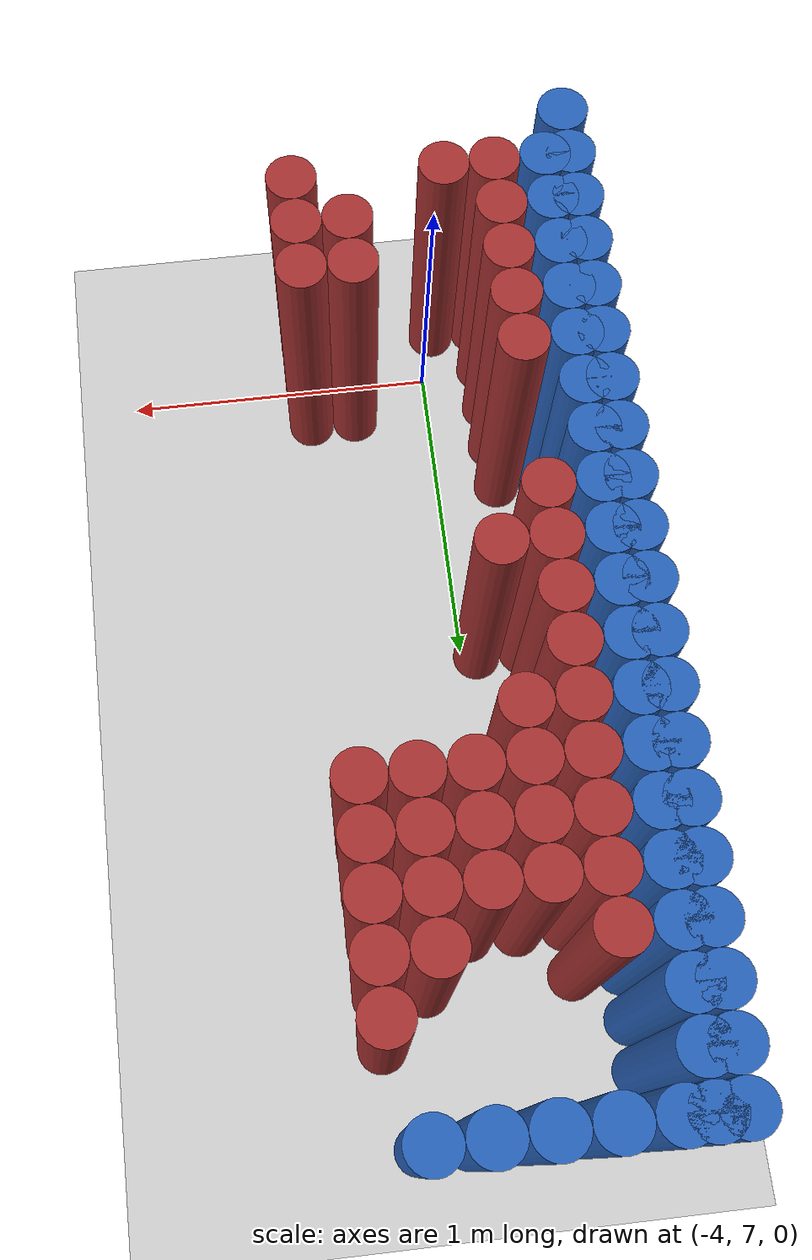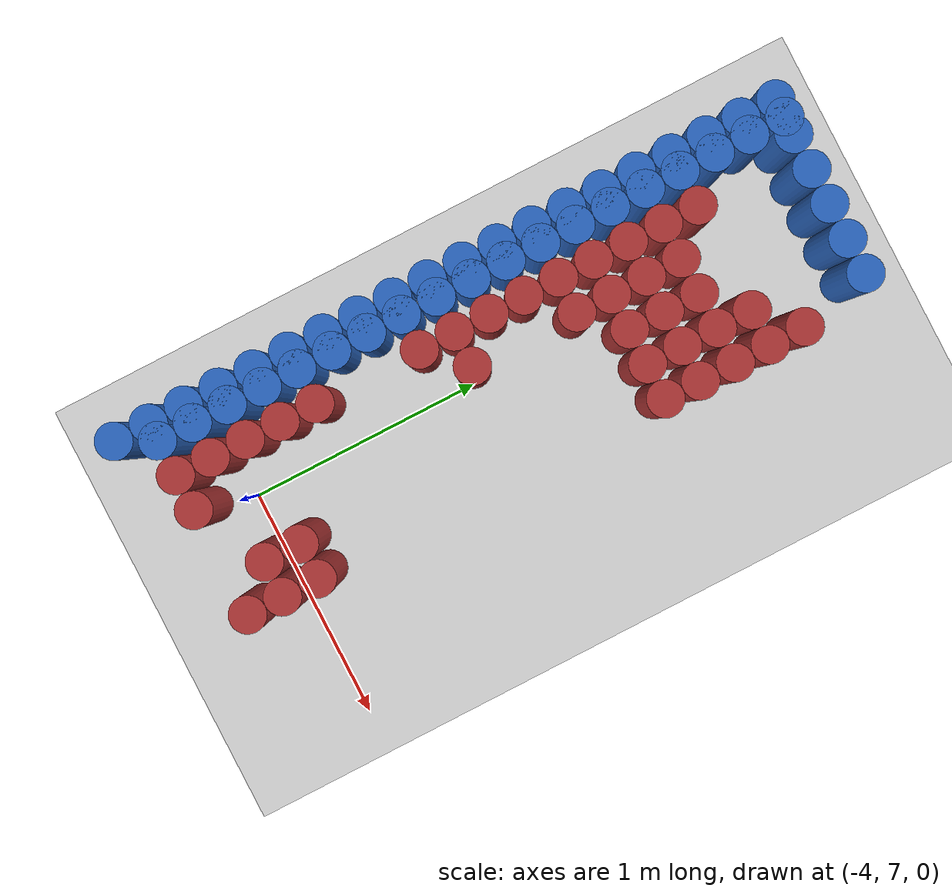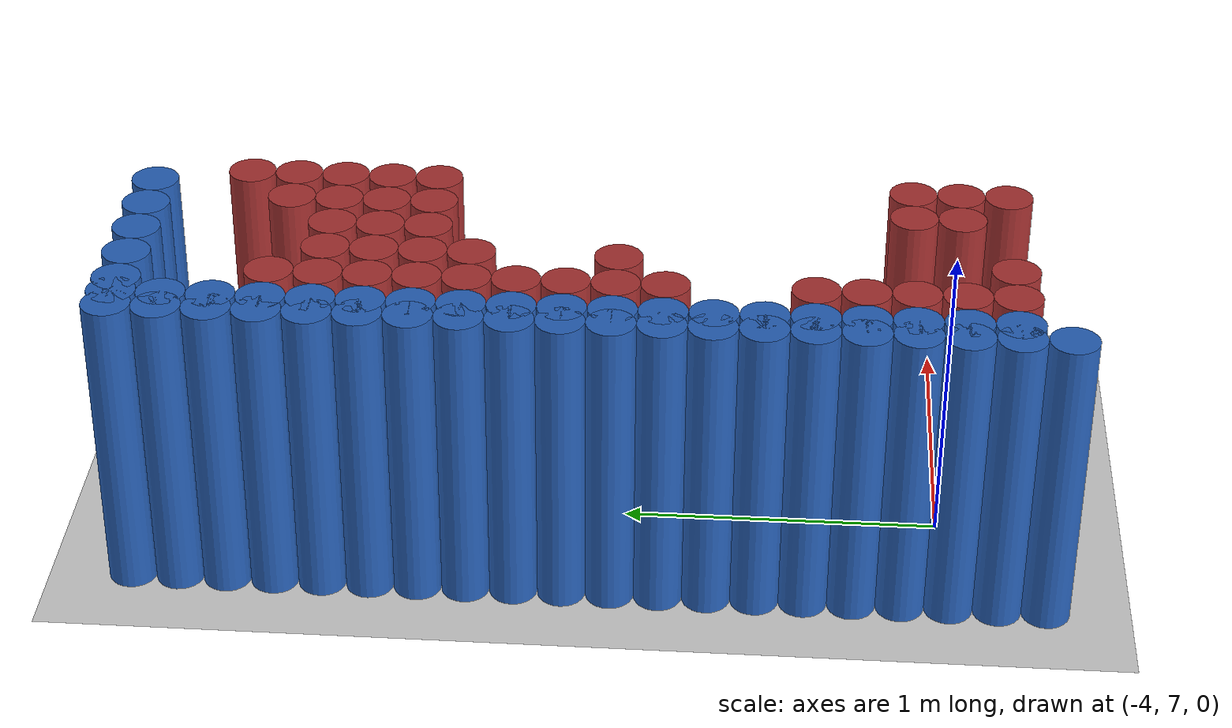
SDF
<sdf version="1.6">
 <world name="barn_world">
  <model name="ground_plane">
   <static>1</static>
   <link name="link">
    <collision name="collision">
     <geometry><plane><normal>0 0 1</normal><size>100 100</size></plane></geometry>
    </collision>
    <visual name="visual">
     <geometry><plane><normal>0 0 1</normal><size>100 100</size></plane></geometry>
     <material>
      <script><uri>file://media/materials/scripts/gazebo.material</uri><name>Gazebo/Grey</name></script>
     </material>
    </visual>
   </link>
  </model>
  <model name="unit_cylinder_137">
   <static>1</static>
   <pose>-4.3500 6.8250 0.5 0 0 0</pose>
   <link name="link">
    <collision name="collision">
     <geometry><cylinder><radius>0.075</radius><length>1</length></cylinder></geometry>
    </collision>
    <visual name="visual">
     <geometry><cylinder><radius>0.075</radius><length>1</length></cylinder></geometry>
     <material><ambient>0.152 0.379 0.72 1</ambient><diffuse>0.152 0.379 0.72 1</diffuse></material>
    </visual>
   </link>
  </model>
  <model name="unit_cylinder_138">
   <static>1</static>
   <pose>-4.3500 6.9750 0.5 0 0 0</pose>
   <link name="link">
    <collision name="collision">
     <geometry><cylinder><radius>0.075</radius><length>1</length></cylinder></geometry>
    </collision>
    <visual name="visual">
     <geometry><cylinder><radius>0.075</radius><length>1</length></cylinder></geometry>
     <material><ambient>0.152 0.379 0.72 1</ambient><diffuse>0.152 0.379 0.72 1</diffuse></material>
    </visual>
   </link>
  </model>
  <model name="unit_cylinder_139">
   <static>1</static>
   <pose>-4.3500 7.1250 0.5 0 0 0</pose>
   <link name="link">
    <collision name="collision">
     <geometry><cylinder><radius>0.075</radius><length>1</length></cylinder></geometry>
    </collision>
    <visual name="visual">
     <geometry><cylinder><radius>0.075</radius><length>1</length></cylinder></geometry>
     <material><ambient>0.152 0.379 0.72 1</ambient><diffuse>0.152 0.379 0.72 1</diffuse></material>
    </visual>
   </link>
  </model>
  <model name="unit_cylinder_140">
   <static>1</static>
   <pose>-4.3500 7.2750 0.5 0 0 0</pose>
   <link name="link">
    <collision name="collision">
     <geometry><cylinder><radius>0.075</radius><length>1</length></cylinder></geometry>
    </collision>
    <visual name="visual">
     <geometry><cylinder><radius>0.075</radius><length>1</length></cylinder></geometry>
     <material><ambient>0.152 0.379 0.72 1</ambient><diffuse>0.152 0.379 0.72 1</diffuse></material>
    </visual>
   </link>
  </model>
  <model name="unit_cylinder_141">
   <static>1</static>
   <pose>-4.3500 7.4250 0.5 0 0 0</pose>
   <link name="link">
    <collision name="collision">
     <geometry><cylinder><radius>0.075</radius><length>1</length></cylinder></geometry>
    </collision>
    <visual name="visual">
     <geometry><cylinder><radius>0.075</radius><length>1</length></cylinder></geometry>
     <material><ambient>0.152 0.379 0.72 1</ambient><diffuse>0.152 0.379 0.72 1</diffuse></material>
    </visual>
   </link>
  </model>
  <model name="unit_cylinder_142">
   <static>1</static>
   <pose>-4.3500 7.5750 0.5 0 0 0</pose>
   <link name="link">
    <collision name="collision">
     <geometry><cylinder><radius>0.075</radius><length>1</length></cylinder></geometry>
    </collision>
    <visual name="visual">
     <geometry><cylinder><radius>0.075</radius><length>1</length></cylinder></geometry>
     <material><ambient>0.152 0.379 0.72 1</ambient><diffuse>0.152 0.379 0.72 1</diffuse></material>
    </visual>
   </link>
  </model>
  <model name="unit_cylinder_143">
   <static>1</static>
   <pose>-4.3500 7.7250 0.5 0 0 0</pose>
   <link name="link">
    <collision name="collision">
     <geometry><cylinder><radius>0.075</radius><length>1</length></cylinder></geometry>
    </collision>
    <visual name="visual">
     <geometry><cylinder><radius>0.075</radius><length>1</length></cylinder></geometry>
     <material><ambient>0.152 0.379 0.72 1</ambient><diffuse>0.152 0.379 0.72 1</diffuse></material>
    </visual>
   </link>
  </model>
  <model name="unit_cylinder_144">
   <static>1</static>
   <pose>-4.3500 7.8750 0.5 0 0 0</pose>
   <link name="link">
    <collision name="collision">
     <geometry><cylinder><radius>0.075</radius><length>1</length></cylinder></geometry>
    </collision>
    <visual name="visual">
     <geometry><cylinder><radius>0.075</radius><length>1</length></cylinder></geometry>
     <material><ambient>0.152 0.379 0.72 1</ambient><diffuse>0.152 0.379 0.72 1</diffuse></material>
    </visual>
   </link>
  </model>
  <model name="unit_cylinder_145">
   <static>1</static>
   <pose>-4.3500 8.0250 0.5 0 0 0</pose>
   <link name="link">
    <collision name="collision">
     <geometry><cylinder><radius>0.075</radius><length>1</length></cylinder></geometry>
    </collision>
    <visual name="visual">
     <geometry><cylinder><radius>0.075</radius><length>1</length></cylinder></geometry>
     <material><ambient>0.152 0.379 0.72 1</ambient><diffuse>0.152 0.379 0.72 1</diffuse></material>
    </visual>
   </link>
  </model>
  <model name="unit_cylinder_146">
   <static>1</static>
   <pose>-4.3500 8.1750 0.5 0 0 0</pose>
   <link name="link">
    <collision name="collision">
     <geometry><cylinder><radius>0.075</radius><length>1</length></cylinder></geometry>
    </collision>
    <visual name="visual">
     <geometry><cylinder><radius>0.075</radius><length>1</length></cylinder></geometry>
     <material><ambient>0.152 0.379 0.72 1</ambient><diffuse>0.152 0.379 0.72 1</diffuse></material>
    </visual>
   </link>
  </model>
  <model name="unit_cylinder_147">
   <static>1</static>
   <pose>-4.3500 8.3250 0.5 0 0 0</pose>
   <link name="link">
    <collision name="collision">
     <geometry><cylinder><radius>0.075</radius><length>1</length></cylinder></geometry>
    </collision>
    <visual name="visual">
     <geometry><cylinder><radius>0.075</radius><length>1</length></cylinder></geometry>
     <material><ambient>0.152 0.379 0.72 1</ambient><diffuse>0.152 0.379 0.72 1</diffuse></material>
    </visual>
   </link>
  </model>
  <model name="unit_cylinder_148">
   <static>1</static>
   <pose>-4.3500 8.4750 0.5 0 0 0</pose>
   <link name="link">
    <collision name="collision">
     <geometry><cylinder><radius>0.075</radius><length>1</length></cylinder></geometry>
    </collision>
    <visual name="visual">
     <geometry><cylinder><radius>0.075</radius><length>1</length></cylinder></geometry>
     <material><ambient>0.152 0.379 0.72 1</ambient><diffuse>0.152 0.379 0.72 1</diffuse></material>
    </visual>
   </link>
  </model>
  <model name="unit_cylinder_149">
   <static>1</static>
   <pose>-4.3500 8.6250 0.5 0 0 0</pose>
   <link name="link">
    <collision name="collision">
     <geometry><cylinder><radius>0.075</radius><length>1</length></cylinder></geometry>
    </collision>
    <visual name="visual">
     <geometry><cylinder><radius>0.075</radius><length>1</length></cylinder></geometry>
     <material><ambient>0.152 0.379 0.72 1</ambient><diffuse>0.152 0.379 0.72 1</diffuse></material>
    </visual>
   </link>
  </model>
  <model name="unit_cylinder_150">
   <static>1</static>
   <pose>-4.3500 8.7750 0.5 0 0 0</pose>
   <link name="link">
    <collision name="collision">
     <geometry><cylinder><radius>0.075</radius><length>1</length></cylinder></geometry>
    </collision>
    <visual name="visual">
     <geometry><cylinder><radius>0.075</radius><length>1</length></cylinder></geometry>
     <material><ambient>0.152 0.379 0.72 1</ambient><diffuse>0.152 0.379 0.72 1</diffuse></material>
    </visual>
   </link>
  </model>
  <model name="unit_cylinder_151">
   <static>1</static>
   <pose>-4.3500 8.9250 0.5 0 0 0</pose>
   <link name="link">
    <collision name="collision">
     <geometry><cylinder><radius>0.075</radius><length>1</length></cylinder></geometry>
    </collision>
    <visual name="visual">
     <geometry><cylinder><radius>0.075</radius><length>1</length></cylinder></geometry>
     <material><ambient>0.152 0.379 0.72 1</ambient><diffuse>0.152 0.379 0.72 1</diffuse></material>
    </visual>
   </link>
  </model>
  <model name="unit_cylinder_152">
   <static>1</static>
   <pose>-4.3500 9.0750 0.5 0 0 0</pose>
   <link name="link">
    <collision name="collision">
     <geometry><cylinder><radius>0.075</radius><length>1</length></cylinder></geometry>
    </collision>
    <visual name="visual">
     <geometry><cylinder><radius>0.075</radius><length>1</length></cylinder></geometry>
     <material><ambient>0.152 0.379 0.72 1</ambient><diffuse>0.152 0.379 0.72 1</diffuse></material>
    </visual>
   </link>
  </model>
  <model name="unit_cylinder_153">
   <static>1</static>
   <pose>-4.3500 9.2250 0.5 0 0 0</pose>
   <link name="link">
    <collision name="collision">
     <geometry><cylinder><radius>0.075</radius><length>1</length></cylinder></geometry>
    </collision>
    <visual name="visual">
     <geometry><cylinder><radius>0.075</radius><length>1</length></cylinder></geometry>
     <material><ambient>0.152 0.379 0.72 1</ambient><diffuse>0.152 0.379 0.72 1</diffuse></material>
    </visual>
   </link>
  </model>
  <model name="unit_cylinder_154">
   <static>1</static>
   <pose>-4.3500 9.3750 0.5 0 0 0</pose>
   <link name="link">
    <collision name="collision">
     <geometry><cylinder><radius>0.075</radius><length>1</length></cylinder></geometry>
    </collision>
    <visual name="visual">
     <geometry><cylinder><radius>0.075</radius><length>1</length></cylinder></geometry>
     <material><ambient>0.152 0.379 0.72 1</ambient><diffuse>0.152 0.379 0.72 1</diffuse></material>
    </visual>
   </link>
  </model>
  <model name="unit_cylinder_155">
   <static>1</static>
   <pose>-4.3500 9.5250 0.5 0 0 0</pose>
   <link name="link">
    <collision name="collision">
     <geometry><cylinder><radius>0.075</radius><length>1</length></cylinder></geometry>
    </collision>
    <visual name="visual">
     <geometry><cylinder><radius>0.075</radius><length>1</length></cylinder></geometry>
     <material><ambient>0.152 0.379 0.72 1</ambient><diffuse>0.152 0.379 0.72 1</diffuse></material>
    </visual>
   </link>
  </model>
  <model name="unit_cylinder_167">
   <static>1</static>
   <pose>-4.2000 6.8250 0.5 0 0 0</pose>
   <link name="link">
    <collision name="collision">
     <geometry><cylinder><radius>0.075</radius><length>1</length></cylinder></geometry>
    </collision>
    <visual name="visual">
     <geometry><cylinder><radius>0.075</radius><length>1</length></cylinder></geometry>
     <material><ambient>0.648 0.192 0.192 1</ambient><diffuse>0.648 0.192 0.192 1</diffuse></material>
    </visual>
   </link>
  </model>
  <model name="unit_cylinder_168">
   <static>1</static>
   <pose>-4.2000 6.9750 0.5 0 0 0</pose>
   <link name="link">
    <collision name="collision">
     <geometry><cylinder><radius>0.075</radius><length>1</length></cylinder></geometry>
    </collision>
    <visual name="visual">
     <geometry><cylinder><radius>0.075</radius><length>1</length></cylinder></geometry>
     <material><ambient>0.648 0.192 0.192 1</ambient><diffuse>0.648 0.192 0.192 1</diffuse></material>
    </visual>
   </link>
  </model>
  <model name="unit_cylinder_169">
   <static>1</static>
   <pose>-4.2000 7.1250 0.5 0 0 0</pose>
   <link name="link">
    <collision name="collision">
     <geometry><cylinder><radius>0.075</radius><length>1</length></cylinder></geometry>
    </collision>
    <visual name="visual">
     <geometry><cylinder><radius>0.075</radius><length>1</length></cylinder></geometry>
     <material><ambient>0.648 0.192 0.192 1</ambient><diffuse>0.648 0.192 0.192 1</diffuse></material>
    </visual>
   </link>
  </model>
  <model name="unit_cylinder_170">
   <static>1</static>
   <pose>-4.2000 7.2750 0.5 0 0 0</pose>
   <link name="link">
    <collision name="collision">
     <geometry><cylinder><radius>0.075</radius><length>1</length></cylinder></geometry>
    </collision>
    <visual name="visual">
     <geometry><cylinder><radius>0.075</radius><length>1</length></cylinder></geometry>
     <material><ambient>0.648 0.192 0.192 1</ambient><diffuse>0.648 0.192 0.192 1</diffuse></material>
    </visual>
   </link>
  </model>
  <model name="unit_cylinder_171">
   <static>1</static>
   <pose>-4.2000 7.4250 0.5 0 0 0</pose>
   <link name="link">
    <collision name="collision">
     <geometry><cylinder><radius>0.075</radius><length>1</length></cylinder></geometry>
    </collision>
    <visual name="visual">
     <geometry><cylinder><radius>0.075</radius><length>1</length></cylinder></geometry>
     <material><ambient>0.648 0.192 0.192 1</ambient><diffuse>0.648 0.192 0.192 1</diffuse></material>
    </visual>
   </link>
  </model>
  <model name="unit_cylinder_172">
   <static>1</static>
   <pose>-4.2000 7.8750 0.5 0 0 0</pose>
   <link name="link">
    <collision name="collision">
     <geometry><cylinder><radius>0.075</radius><length>1</length></cylinder></geometry>
    </collision>
    <visual name="visual">
     <geometry><cylinder><radius>0.075</radius><length>1</length></cylinder></geometry>
     <material><ambient>0.648 0.192 0.192 1</ambient><diffuse>0.648 0.192 0.192 1</diffuse></material>
    </visual>
   </link>
  </model>
  <model name="unit_cylinder_173">
   <static>1</static>
   <pose>-4.2000 8.0250 0.5 0 0 0</pose>
   <link name="link">
    <collision name="collision">
     <geometry><cylinder><radius>0.075</radius><length>1</length></cylinder></geometry>
    </collision>
    <visual name="visual">
     <geometry><cylinder><radius>0.075</radius><length>1</length></cylinder></geometry>
     <material><ambient>0.648 0.192 0.192 1</ambient><diffuse>0.648 0.192 0.192 1</diffuse></material>
    </visual>
   </link>
  </model>
  <model name="unit_cylinder_174">
   <static>1</static>
   <pose>-4.2000 8.1750 0.5 0 0 0</pose>
   <link name="link">
    <collision name="collision">
     <geometry><cylinder><radius>0.075</radius><length>1</length></cylinder></geometry>
    </collision>
    <visual name="visual">
     <geometry><cylinder><radius>0.075</radius><length>1</length></cylinder></geometry>
     <material><ambient>0.648 0.192 0.192 1</ambient><diffuse>0.648 0.192 0.192 1</diffuse></material>
    </visual>
   </link>
  </model>
  <model name="unit_cylinder_175">
   <static>1</static>
   <pose>-4.2000 8.3250 0.5 0 0 0</pose>
   <link name="link">
    <collision name="collision">
     <geometry><cylinder><radius>0.075</radius><length>1</length></cylinder></geometry>
    </collision>
    <visual name="visual">
     <geometry><cylinder><radius>0.075</radius><length>1</length></cylinder></geometry>
     <material><ambient>0.648 0.192 0.192 1</ambient><diffuse>0.648 0.192 0.192 1</diffuse></material>
    </visual>
   </link>
  </model>
  <model name="unit_cylinder_176">
   <static>1</static>
   <pose>-4.2000 8.4750 0.5 0 0 0</pose>
   <link name="link">
    <collision name="collision">
     <geometry><cylinder><radius>0.075</radius><length>1</length></cylinder></geometry>
    </collision>
    <visual name="visual">
     <geometry><cylinder><radius>0.075</radius><length>1</length></cylinder></geometry>
     <material><ambient>0.648 0.192 0.192 1</ambient><diffuse>0.648 0.192 0.192 1</diffuse></material>
    </visual>
   </link>
  </model>
  <model name="unit_cylinder_177">
   <static>1</static>
   <pose>-4.2000 8.6250 0.5 0 0 0</pose>
   <link name="link">
    <collision name="collision">
     <geometry><cylinder><radius>0.075</radius><length>1</length></cylinder></geometry>
    </collision>
    <visual name="visual">
     <geometry><cylinder><radius>0.075</radius><length>1</length></cylinder></geometry>
     <material><ambient>0.648 0.192 0.192 1</ambient><diffuse>0.648 0.192 0.192 1</diffuse></material>
    </visual>
   </link>
  </model>
  <model name="unit_cylinder_178">
   <static>1</static>
   <pose>-4.2000 8.7750 0.5 0 0 0</pose>
   <link name="link">
    <collision name="collision">
     <geometry><cylinder><radius>0.075</radius><length>1</length></cylinder></geometry>
    </collision>
    <visual name="visual">
     <geometry><cylinder><radius>0.075</radius><length>1</length></cylinder></geometry>
     <material><ambient>0.648 0.192 0.192 1</ambient><diffuse>0.648 0.192 0.192 1</diffuse></material>
    </visual>
   </link>
  </model>
  <model name="unit_cylinder_179">
   <static>1</static>
   <pose>-4.2000 8.9250 0.5 0 0 0</pose>
   <link name="link">
    <collision name="collision">
     <geometry><cylinder><radius>0.075</radius><length>1</length></cylinder></geometry>
    </collision>
    <visual name="visual">
     <geometry><cylinder><radius>0.075</radius><length>1</length></cylinder></geometry>
     <material><ambient>0.648 0.192 0.192 1</ambient><diffuse>0.648 0.192 0.192 1</diffuse></material>
    </visual>
   </link>
  </model>
  <model name="unit_cylinder_180">
   <static>1</static>
   <pose>-4.2000 9.0750 0.5 0 0 0</pose>
   <link name="link">
    <collision name="collision">
     <geometry><cylinder><radius>0.075</radius><length>1</length></cylinder></geometry>
    </collision>
    <visual name="visual">
     <geometry><cylinder><radius>0.075</radius><length>1</length></cylinder></geometry>
     <material><ambient>0.648 0.192 0.192 1</ambient><diffuse>0.648 0.192 0.192 1</diffuse></material>
    </visual>
   </link>
  </model>
  <model name="unit_cylinder_188">
   <static>1</static>
   <pose>-4.0500 6.8250 0.5 0 0 0</pose>
   <link name="link">
    <collision name="collision">
     <geometry><cylinder><radius>0.075</radius><length>1</length></cylinder></geometry>
    </collision>
    <visual name="visual">
     <geometry><cylinder><radius>0.075</radius><length>1</length></cylinder></geometry>
     <material><ambient>0.648 0.192 0.192 1</ambient><diffuse>0.648 0.192 0.192 1</diffuse></material>
    </visual>
   </link>
  </model>
  <model name="unit_cylinder_189">
   <static>1</static>
   <pose>-4.0500 8.0250 0.5 0 0 0</pose>
   <link name="link">
    <collision name="collision">
     <geometry><cylinder><radius>0.075</radius><length>1</length></cylinder></geometry>
    </collision>
    <visual name="visual">
     <geometry><cylinder><radius>0.075</radius><length>1</length></cylinder></geometry>
     <material><ambient>0.648 0.192 0.192 1</ambient><diffuse>0.648 0.192 0.192 1</diffuse></material>
    </visual>
   </link>
  </model>
  <model name="unit_cylinder_190">
   <static>1</static>
   <pose>-4.0500 8.4750 0.5 0 0 0</pose>
   <link name="link">
    <collision name="collision">
     <geometry><cylinder><radius>0.075</radius><length>1</length></cylinder></geometry>
    </collision>
    <visual name="visual">
     <geometry><cylinder><radius>0.075</radius><length>1</length></cylinder></geometry>
     <material><ambient>0.648 0.192 0.192 1</ambient><diffuse>0.648 0.192 0.192 1</diffuse></material>
    </visual>
   </link>
  </model>
  <model name="unit_cylinder_191">
   <static>1</static>
   <pose>-4.0500 8.6250 0.5 0 0 0</pose>
   <link name="link">
    <collision name="collision">
     <geometry><cylinder><radius>0.075</radius><length>1</length></cylinder></geometry>
    </collision>
    <visual name="visual">
     <geometry><cylinder><radius>0.075</radius><length>1</length></cylinder></geometry>
     <material><ambient>0.648 0.192 0.192 1</ambient><diffuse>0.648 0.192 0.192 1</diffuse></material>
    </visual>
   </link>
  </model>
  <model name="unit_cylinder_192">
   <static>1</static>
   <pose>-4.0500 8.7750 0.5 0 0 0</pose>
   <link name="link">
    <collision name="collision">
     <geometry><cylinder><radius>0.075</radius><length>1</length></cylinder></geometry>
    </collision>
    <visual name="visual">
     <geometry><cylinder><radius>0.075</radius><length>1</length></cylinder></geometry>
     <material><ambient>0.648 0.192 0.192 1</ambient><diffuse>0.648 0.192 0.192 1</diffuse></material>
    </visual>
   </link>
  </model>
  <model name="unit_cylinder_193">
   <static>1</static>
   <pose>-4.0500 8.9250 0.5 0 0 0</pose>
   <link name="link">
    <collision name="collision">
     <geometry><cylinder><radius>0.075</radius><length>1</length></cylinder></geometry>
    </collision>
    <visual name="visual">
     <geometry><cylinder><radius>0.075</radius><length>1</length></cylinder></geometry>
     <material><ambient>0.648 0.192 0.192 1</ambient><diffuse>0.648 0.192 0.192 1</diffuse></material>
    </visual>
   </link>
  </model>
  <model name="unit_cylinder_200">
   <static>1</static>
   <pose>-3.9000 8.6250 0.5 0 0 0</pose>
   <link name="link">
    <collision name="collision">
     <geometry><cylinder><radius>0.075</radius><length>1</length></cylinder></geometry>
    </collision>
    <visual name="visual">
     <geometry><cylinder><radius>0.075</radius><length>1</length></cylinder></geometry>
     <material><ambient>0.648 0.192 0.192 1</ambient><diffuse>0.648 0.192 0.192 1</diffuse></material>
    </visual>
   </link>
  </model>
  <model name="unit_cylinder_201">
   <static>1</static>
   <pose>-3.9000 8.7750 0.5 0 0 0</pose>
   <link name="link">
    <collision name="collision">
     <geometry><cylinder><radius>0.075</radius><length>1</length></cylinder></geometry>
    </collision>
    <visual name="visual">
     <geometry><cylinder><radius>0.075</radius><length>1</length></cylinder></geometry>
     <material><ambient>0.648 0.192 0.192 1</ambient><diffuse>0.648 0.192 0.192 1</diffuse></material>
    </visual>
   </link>
  </model>
  <model name="unit_cylinder_202">
   <static>1</static>
   <pose>-3.9000 8.9250 0.5 0 0 0</pose>
   <link name="link">
    <collision name="collision">
     <geometry><cylinder><radius>0.075</radius><length>1</length></cylinder></geometry>
    </collision>
    <visual name="visual">
     <geometry><cylinder><radius>0.075</radius><length>1</length></cylinder></geometry>
     <material><ambient>0.648 0.192 0.192 1</ambient><diffuse>0.648 0.192 0.192 1</diffuse></material>
    </visual>
   </link>
  </model>
  <model name="unit_cylinder_209">
   <static>1</static>
   <pose>-3.7500 6.9750 0.5 0 0 0</pose>
   <link name="link">
    <collision name="collision">
     <geometry><cylinder><radius>0.075</radius><length>1</length></cylinder></geometry>
    </collision>
    <visual name="visual">
     <geometry><cylinder><radius>0.075</radius><length>1</length></cylinder></geometry>
     <material><ambient>0.648 0.192 0.192 1</ambient><diffuse>0.648 0.192 0.192 1</diffuse></material>
    </visual>
   </link>
  </model>
  <model name="unit_cylinder_210">
   <static>1</static>
   <pose>-3.7500 7.1250 0.5 0 0 0</pose>
   <link name="link">
    <collision name="collision">
     <geometry><cylinder><radius>0.075</radius><length>1</length></cylinder></geometry>
    </collision>
    <visual name="visual">
     <geometry><cylinder><radius>0.075</radius><length>1</length></cylinder></geometry>
     <material><ambient>0.648 0.192 0.192 1</ambient><diffuse>0.648 0.192 0.192 1</diffuse></material>
    </visual>
   </link>
  </model>
  <model name="unit_cylinder_211">
   <static>1</static>
   <pose>-3.7500 8.6250 0.5 0 0 0</pose>
   <link name="link">
    <collision name="collision">
     <geometry><cylinder><radius>0.075</radius><length>1</length></cylinder></geometry>
    </collision>
    <visual name="visual">
     <geometry><cylinder><radius>0.075</radius><length>1</length></cylinder></geometry>
     <material><ambient>0.648 0.192 0.192 1</ambient><diffuse>0.648 0.192 0.192 1</diffuse></material>
    </visual>
   </link>
  </model>
  <model name="unit_cylinder_212">
   <static>1</static>
   <pose>-3.7500 8.7750 0.5 0 0 0</pose>
   <link name="link">
    <collision name="collision">
     <geometry><cylinder><radius>0.075</radius><length>1</length></cylinder></geometry>
    </collision>
    <visual name="visual">
     <geometry><cylinder><radius>0.075</radius><length>1</length></cylinder></geometry>
     <material><ambient>0.648 0.192 0.192 1</ambient><diffuse>0.648 0.192 0.192 1</diffuse></material>
    </visual>
   </link>
  </model>
  <model name="unit_cylinder_213">
   <static>1</static>
   <pose>-3.7500 8.9250 0.5 0 0 0</pose>
   <link name="link">
    <collision name="collision">
     <geometry><cylinder><radius>0.075</radius><length>1</length></cylinder></geometry>
    </collision>
    <visual name="visual">
     <geometry><cylinder><radius>0.075</radius><length>1</length></cylinder></geometry>
     <material><ambient>0.648 0.192 0.192 1</ambient><diffuse>0.648 0.192 0.192 1</diffuse></material>
    </visual>
   </link>
  </model>
  <model name="unit_cylinder_214">
   <static>1</static>
   <pose>-3.7500 9.0750 0.5 0 0 0</pose>
   <link name="link">
    <collision name="collision">
     <geometry><cylinder><radius>0.075</radius><length>1</length></cylinder></geometry>
    </collision>
    <visual name="visual">
     <geometry><cylinder><radius>0.075</radius><length>1</length></cylinder></geometry>
     <material><ambient>0.648 0.192 0.192 1</ambient><diffuse>0.648 0.192 0.192 1</diffuse></material>
    </visual>
   </link>
  </model>
  <model name="unit_cylinder_219">
   <static>1</static>
   <pose>-3.6000 6.8250 0.5 0 0 0</pose>
   <link name="link">
    <collision name="collision">
     <geometry><cylinder><radius>0.075</radius><length>1</length></cylinder></geometry>
    </collision>
    <visual name="visual">
     <geometry><cylinder><radius>0.075</radius><length>1</length></cylinder></geometry>
     <material><ambient>0.648 0.192 0.192 1</ambient><diffuse>0.648 0.192 0.192 1</diffuse></material>
    </visual>
   </link>
  </model>
  <model name="unit_cylinder_220">
   <static>1</static>
   <pose>-3.6000 6.9750 0.5 0 0 0</pose>
   <link name="link">
    <collision name="collision">
     <geometry><cylinder><radius>0.075</radius><length>1</length></cylinder></geometry>
    </collision>
    <visual name="visual">
     <geometry><cylinder><radius>0.075</radius><length>1</length></cylinder></geometry>
     <material><ambient>0.648 0.192 0.192 1</ambient><diffuse>0.648 0.192 0.192 1</diffuse></material>
    </visual>
   </link>
  </model>
  <model name="unit_cylinder_221">
   <static>1</static>
   <pose>-3.6000 7.1250 0.5 0 0 0</pose>
   <link name="link">
    <collision name="collision">
     <geometry><cylinder><radius>0.075</radius><length>1</length></cylinder></geometry>
    </collision>
    <visual name="visual">
     <geometry><cylinder><radius>0.075</radius><length>1</length></cylinder></geometry>
     <material><ambient>0.648 0.192 0.192 1</ambient><diffuse>0.648 0.192 0.192 1</diffuse></material>
    </visual>
   </link>
  </model>
  <model name="unit_cylinder_222">
   <static>1</static>
   <pose>-3.6000 8.6250 0.5 0 0 0</pose>
   <link name="link">
    <collision name="collision">
     <geometry><cylinder><radius>0.075</radius><length>1</length></cylinder></geometry>
    </collision>
    <visual name="visual">
     <geometry><cylinder><radius>0.075</radius><length>1</length></cylinder></geometry>
     <material><ambient>0.648 0.192 0.192 1</ambient><diffuse>0.648 0.192 0.192 1</diffuse></material>
    </visual>
   </link>
  </model>
  <model name="unit_cylinder_223">
   <static>1</static>
   <pose>-3.6000 8.7750 0.5 0 0 0</pose>
   <link name="link">
    <collision name="collision">
     <geometry><cylinder><radius>0.075</radius><length>1</length></cylinder></geometry>
    </collision>
    <visual name="visual">
     <geometry><cylinder><radius>0.075</radius><length>1</length></cylinder></geometry>
     <material><ambient>0.648 0.192 0.192 1</ambient><diffuse>0.648 0.192 0.192 1</diffuse></material>
    </visual>
   </link>
  </model>
  <model name="unit_cylinder_224">
   <static>1</static>
   <pose>-3.6000 8.9250 0.5 0 0 0</pose>
   <link name="link">
    <collision name="collision">
     <geometry><cylinder><radius>0.075</radius><length>1</length></cylinder></geometry>
    </collision>
    <visual name="visual">
     <geometry><cylinder><radius>0.075</radius><length>1</length></cylinder></geometry>
     <material><ambient>0.648 0.192 0.192 1</ambient><diffuse>0.648 0.192 0.192 1</diffuse></material>
    </visual>
   </link>
  </model>
  <model name="unit_cylinder_225">
   <static>1</static>
   <pose>-3.6000 9.0750 0.5 0 0 0</pose>
   <link name="link">
    <collision name="collision">
     <geometry><cylinder><radius>0.075</radius><length>1</length></cylinder></geometry>
    </collision>
    <visual name="visual">
     <geometry><cylinder><radius>0.075</radius><length>1</length></cylinder></geometry>
     <material><ambient>0.648 0.192 0.192 1</ambient><diffuse>0.648 0.192 0.192 1</diffuse></material>
    </visual>
   </link>
  </model>
  <model name="unit_cylinder_226">
   <static>1</static>
   <pose>-3.6000 9.2250 0.5 0 0 0</pose>
   <link name="link">
    <collision name="collision">
     <geometry><cylinder><radius>0.075</radius><length>1</length></cylinder></geometry>
    </collision>
    <visual name="visual">
     <geometry><cylinder><radius>0.075</radius><length>1</length></cylinder></geometry>
     <material><ambient>0.648 0.192 0.192 1</ambient><diffuse>0.648 0.192 0.192 1</diffuse></material>
    </visual>
   </link>
  </model>
  <model name="unit_cylinder_425">
   <static>1</static>
   <pose>-3.6750 9.5250 0.5 0 0 0</pose>
   <link name="link">
    <collision name="collision">
     <geometry><cylinder><radius>0.075</radius><length>1</length></cylinder></geometry>
    </collision>
    <visual name="visual">
     <geometry><cylinder><radius>0.075</radius><length>1</length></cylinder></geometry>
     <material><ambient>0.152 0.379 0.72 1</ambient><diffuse>0.152 0.379 0.72 1</diffuse></material>
    </visual>
   </link>
  </model>
  <model name="unit_cylinder_426">
   <static>1</static>
   <pose>-3.8250 9.5250 0.5 0 0 0</pose>
   <link name="link">
    <collision name="collision">
     <geometry><cylinder><radius>0.075</radius><length>1</length></cylinder></geometry>
    </collision>
    <visual name="visual">
     <geometry><cylinder><radius>0.075</radius><length>1</length></cylinder></geometry>
     <material><ambient>0.152 0.379 0.72 1</ambient><diffuse>0.152 0.379 0.72 1</diffuse></material>
    </visual>
   </link>
  </model>
  <model name="unit_cylinder_427">
   <static>1</static>
   <pose>-3.9750 9.5250 0.5 0 0 0</pose>
   <link name="link">
    <collision name="collision">
     <geometry><cylinder><radius>0.075</radius><length>1</length></cylinder></geometry>
    </collision>
    <visual name="visual">
     <geometry><cylinder><radius>0.075</radius><length>1</length></cylinder></geometry>
     <material><ambient>0.152 0.379 0.72 1</ambient><diffuse>0.152 0.379 0.72 1</diffuse></material>
    </visual>
   </link>
  </model>
  <model name="unit_cylinder_428">
   <static>1</static>
   <pose>-4.1250 9.5250 0.5 0 0 0</pose>
   <link name="link">
    <collision name="collision">
     <geometry><cylinder><radius>0.075</radius><length>1</length></cylinder></geometry>
    </collision>
    <visual name="visual">
     <geometry><cylinder><radius>0.075</radius><length>1</length></cylinder></geometry>
     <material><ambient>0.152 0.379 0.72 1</ambient><diffuse>0.152 0.379 0.72 1</diffuse></material>
    </visual>
   </link>
  </model>
  <model name="unit_cylinder_429">
   <static>1</static>
   <pose>-4.2750 9.5250 0.5 0 0 0</pose>
   <link name="link">
    <collision name="collision">
     <geometry><cylinder><radius>0.075</radius><length>1</length></cylinder></geometry>
    </collision>
    <visual name="visual">
     <geometry><cylinder><radius>0.075</radius><length>1</length></cylinder></geometry>
     <material><ambient>0.152 0.379 0.72 1</ambient><diffuse>0.152 0.379 0.72 1</diffuse></material>
    </visual>
   </link>
  </model>
  <model name="unit_cylinder_430">
   <static>1</static>
   <pose>-4.4250 9.5250 0.5 0 0 0</pose>
   <link name="link">
    <collision name="collision">
     <geometry><cylinder><radius>0.075</radius><length>1</length></cylinder></geometry>
    </collision>
    <visual name="visual">
     <geometry><cylinder><radius>0.075</radius><length>1</length></cylinder></geometry>
     <material><ambient>0.152 0.379 0.72 1</ambient><diffuse>0.152 0.379 0.72 1</diffuse></material>
    </visual>
   </link>
  </model>
  <model name="unit_cylinder_452">
   <static>1</static>
   <pose>-4.4250 6.6750 0.5 0 0 0</pose>
   <link name="link">
    <collision name="collision">
     <geometry><cylinder><radius>0.075</radius><length>1</length></cylinder></geometry>
    </collision>
    <visual name="visual">
     <geometry><cylinder><radius>0.075</radius><length>1</length></cylinder></geometry>
     <material><ambient>0.152 0.379 0.72 1</ambient><diffuse>0.152 0.379 0.72 1</diffuse></material>
    </visual>
   </link>
  </model>
  <model name="unit_cylinder_454">
   <static>1</static>
   <pose>-4.4250 6.8250 0.5 0 0 0</pose>
   <link name="link">
    <collision name="collision">
     <geometry><cylinder><radius>0.075</radius><length>1</length></cylinder></geometry>
    </collision>
    <visual name="visual">
     <geometry><cylinder><radius>0.075</radius><length>1</length></cylinder></geometry>
     <material><ambient>0.152 0.379 0.72 1</ambient><diffuse>0.152 0.379 0.72 1</diffuse></material>
    </visual>
   </link>
  </model>
  <model name="unit_cylinder_456">
   <static>1</static>
   <pose>-4.4250 6.9750 0.5 0 0 0</pose>
   <link name="link">
    <collision name="collision">
     <geometry><cylinder><radius>0.075</radius><length>1</length></cylinder></geometry>
    </collision>
    <visual name="visual">
     <geometry><cylinder><radius>0.075</radius><length>1</length></cylinder></geometry>
     <material><ambient>0.152 0.379 0.72 1</ambient><diffuse>0.152 0.379 0.72 1</diffuse></material>
    </visual>
   </link>
  </model>
  <model name="unit_cylinder_458">
   <static>1</static>
   <pose>-4.4250 7.1250 0.5 0 0 0</pose>
   <link name="link">
    <collision name="collision">
     <geometry><cylinder><radius>0.075</radius><length>1</length></cylinder></geometry>
    </collision>
    <visual name="visual">
     <geometry><cylinder><radius>0.075</radius><length>1</length></cylinder></geometry>
     <material><ambient>0.152 0.379 0.72 1</ambient><diffuse>0.152 0.379 0.72 1</diffuse></material>
    </visual>
   </link>
  </model>
  <model name="unit_cylinder_460">
   <static>1</static>
   <pose>-4.4250 7.2750 0.5 0 0 0</pose>
   <link name="link">
    <collision name="collision">
     <geometry><cylinder><radius>0.075</radius><length>1</length></cylinder></geometry>
    </collision>
    <visual name="visual">
     <geometry><cylinder><radius>0.075</radius><length>1</length></cylinder></geometry>
     <material><ambient>0.152 0.379 0.72 1</ambient><diffuse>0.152 0.379 0.72 1</diffuse></material>
    </visual>
   </link>
  </model>
  <model name="unit_cylinder_462">
   <static>1</static>
   <pose>-4.4250 7.4250 0.5 0 0 0</pose>
   <link name="link">
    <collision name="collision">
     <geometry><cylinder><radius>0.075</radius><length>1</length></cylinder></geometry>
    </collision>
    <visual name="visual">
     <geometry><cylinder><radius>0.075</radius><length>1</length></cylinder></geometry>
     <material><ambient>0.152 0.379 0.72 1</ambient><diffuse>0.152 0.379 0.72 1</diffuse></material>
    </visual>
   </link>
  </model>
  <model name="unit_cylinder_464">
   <static>1</static>
   <pose>-4.4250 7.5750 0.5 0 0 0</pose>
   <link name="link">
    <collision name="collision">
     <geometry><cylinder><radius>0.075</radius><length>1</length></cylinder></geometry>
    </collision>
    <visual name="visual">
     <geometry><cylinder><radius>0.075</radius><length>1</length></cylinder></geometry>
     <material><ambient>0.152 0.379 0.72 1</ambient><diffuse>0.152 0.379 0.72 1</diffuse></material>
    </visual>
   </link>
  </model>
  <model name="unit_cylinder_466">
   <static>1</static>
   <pose>-4.4250 7.7250 0.5 0 0 0</pose>
   <link name="link">
    <collision name="collision">
     <geometry><cylinder><radius>0.075</radius><length>1</length></cylinder></geometry>
    </collision>
    <visual name="visual">
     <geometry><cylinder><radius>0.075</radius><length>1</length></cylinder></geometry>
     <material><ambient>0.152 0.379 0.72 1</ambient><diffuse>0.152 0.379 0.72 1</diffuse></material>
    </visual>
   </link>
  </model>
  <model name="unit_cylinder_468">
   <static>1</static>
   <pose>-4.4250 7.8750 0.5 0 0 0</pose>
   <link name="link">
    <collision name="collision">
     <geometry><cylinder><radius>0.075</radius><length>1</length></cylinder></geometry>
    </collision>
    <visual name="visual">
     <geometry><cylinder><radius>0.075</radius><length>1</length></cylinder></geometry>
     <material><ambient>0.152 0.379 0.72 1</ambient><diffuse>0.152 0.379 0.72 1</diffuse></material>
    </visual>
   </link>
  </model>
  <model name="unit_cylinder_470">
   <static>1</static>
   <pose>-4.4250 8.0250 0.5 0 0 0</pose>
   <link name="link">
    <collision name="collision">
     <geometry><cylinder><radius>0.075</radius><length>1</length></cylinder></geometry>
    </collision>
    <visual name="visual">
     <geometry><cylinder><radius>0.075</radius><length>1</length></cylinder></geometry>
     <material><ambient>0.152 0.379 0.72 1</ambient><diffuse>0.152 0.379 0.72 1</diffuse></material>
    </visual>
   </link>
  </model>
  <model name="unit_cylinder_472">
   <static>1</static>
   <pose>-4.4250 8.1750 0.5 0 0 0</pose>
   <link name="link">
    <collision name="collision">
     <geometry><cylinder><radius>0.075</radius><length>1</length></cylinder></geometry>
    </collision>
    <visual name="visual">
     <geometry><cylinder><radius>0.075</radius><length>1</length></cylinder></geometry>
     <material><ambient>0.152 0.379 0.72 1</ambient><diffuse>0.152 0.379 0.72 1</diffuse></material>
    </visual>
   </link>
  </model>
  <model name="unit_cylinder_474">
   <static>1</static>
   <pose>-4.4250 8.3250 0.5 0 0 0</pose>
   <link name="link">
    <collision name="collision">
     <geometry><cylinder><radius>0.075</radius><length>1</length></cylinder></geometry>
    </collision>
    <visual name="visual">
     <geometry><cylinder><radius>0.075</radius><length>1</length></cylinder></geometry>
     <material><ambient>0.152 0.379 0.72 1</ambient><diffuse>0.152 0.379 0.72 1</diffuse></material>
    </visual>
   </link>
  </model>
  <model name="unit_cylinder_476">
   <static>1</static>
   <pose>-4.4250 8.4750 0.5 0 0 0</pose>
   <link name="link">
    <collision name="collision">
     <geometry><cylinder><radius>0.075</radius><length>1</length></cylinder></geometry>
    </collision>
    <visual name="visual">
     <geometry><cylinder><radius>0.075</radius><length>1</length></cylinder></geometry>
     <material><ambient>0.152 0.379 0.72 1</ambient><diffuse>0.152 0.379 0.72 1</diffuse></material>
    </visual>
   </link>
  </model>
  <model name="unit_cylinder_478">
   <static>1</static>
   <pose>-4.4250 8.6250 0.5 0 0 0</pose>
   <link name="link">
    <collision name="collision">
     <geometry><cylinder><radius>0.075</radius><length>1</length></cylinder></geometry>
    </collision>
    <visual name="visual">
     <geometry><cylinder><radius>0.075</radius><length>1</length></cylinder></geometry>
     <material><ambient>0.152 0.379 0.72 1</ambient><diffuse>0.152 0.379 0.72 1</diffuse></material>
    </visual>
   </link>
  </model>
  <model name="unit_cylinder_480">
   <static>1</static>
   <pose>-4.4250 8.7750 0.5 0 0 0</pose>
   <link name="link">
    <collision name="collision">
     <geometry><cylinder><radius>0.075</radius><length>1</length></cylinder></geometry>
    </collision>
    <visual name="visual">
     <geometry><cylinder><radius>0.075</radius><length>1</length></cylinder></geometry>
     <material><ambient>0.152 0.379 0.72 1</ambient><diffuse>0.152 0.379 0.72 1</diffuse></material>
    </visual>
   </link>
  </model>
  <model name="unit_cylinder_482">
   <static>1</static>
   <pose>-4.4250 8.9250 0.5 0 0 0</pose>
   <link name="link">
    <collision name="collision">
     <geometry><cylinder><radius>0.075</radius><length>1</length></cylinder></geometry>
    </collision>
    <visual name="visual">
     <geometry><cylinder><radius>0.075</radius><length>1</length></cylinder></geometry>
     <material><ambient>0.152 0.379 0.72 1</ambient><diffuse>0.152 0.379 0.72 1</diffuse></material>
    </visual>
   </link>
  </model>
  <model name="unit_cylinder_484">
   <static>1</static>
   <pose>-4.4250 9.0750 0.5 0 0 0</pose>
   <link name="link">
    <collision name="collision">
     <geometry><cylinder><radius>0.075</radius><length>1</length></cylinder></geometry>
    </collision>
    <visual name="visual">
     <geometry><cylinder><radius>0.075</radius><length>1</length></cylinder></geometry>
     <material><ambient>0.152 0.379 0.72 1</ambient><diffuse>0.152 0.379 0.72 1</diffuse></material>
    </visual>
   </link>
  </model>
  <model name="unit_cylinder_486">
   <static>1</static>
   <pose>-4.4250 9.2250 0.5 0 0 0</pose>
   <link name="link">
    <collision name="collision">
     <geometry><cylinder><radius>0.075</radius><length>1</length></cylinder></geometry>
    </collision>
    <visual name="visual">
     <geometry><cylinder><radius>0.075</radius><length>1</length></cylinder></geometry>
     <material><ambient>0.152 0.379 0.72 1</ambient><diffuse>0.152 0.379 0.72 1</diffuse></material>
    </visual>
   </link>
  </model>
  <model name="unit_cylinder_488">
   <static>1</static>
   <pose>-4.4250 9.3750 0.5 0 0 0</pose>
   <link name="link">
    <collision name="collision">
     <geometry><cylinder><radius>0.075</radius><length>1</length></cylinder></geometry>
    </collision>
    <visual name="visual">
     <geometry><cylinder><radius>0.075</radius><length>1</length></cylinder></geometry>
     <material><ambient>0.152 0.379 0.72 1</ambient><diffuse>0.152 0.379 0.72 1</diffuse></material>
    </visual>
   </link>
  </model>
 </world>
</sdf>
